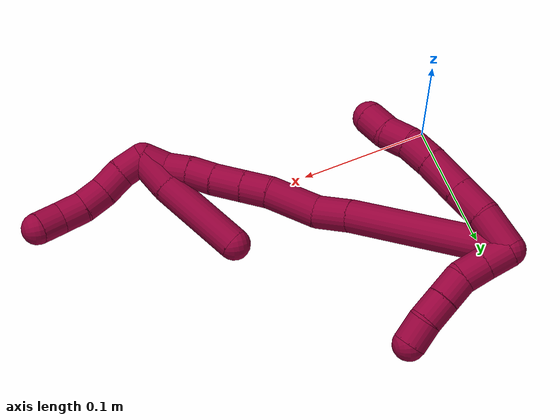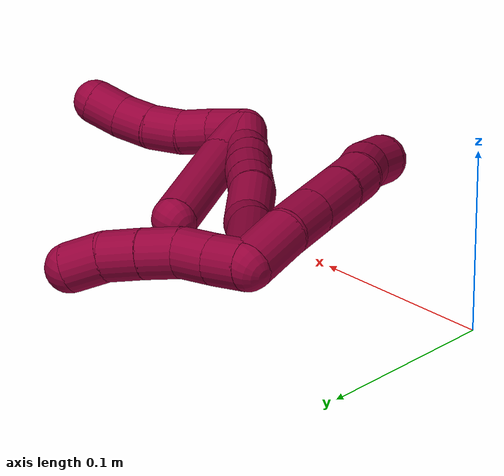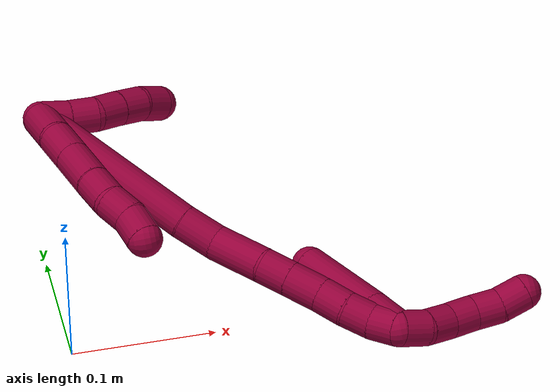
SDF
<sdf version="1.7">
 <world name="default">
  <model name="8">
   <static>0</static>
   <link name="8">
    <collision name="collision-cylinder-e_1_2_8">
     <pose>0.003474 -0.01459 0.004266 1.28632 0.22469 0.168709</pose>
     <geometry><cylinder><radius>0.0125</radius><length>0.031185</length></cylinder></geometry>
     <surface>
      <friction><ode><mu>1.16</mu><mu2>1.16</mu2><slip1>0</slip1><slip2>0</slip2></ode></friction>
      <contact><ode><kp>1e+06</kp><kd>1</kd><max_vel>0</max_vel><min_depth>0.001</min_depth></ode></contact>
     </surface>
    </collision>
    <visual name="visual-cylinder-e_1_2_8">
     <pose>0.003474 -0.01459 0.004266 1.28632 0.22469 0.168709</pose>
     <geometry><cylinder><radius>0.0125</radius><length>0.031185</length></cylinder></geometry>
     <material><ambient>0.584314 0 0.227451 1</ambient></material>
    </visual>
    <collision name="collision-cylinder-e_2_8_9">
     <pose>0.011927 -0.040204 0.012963 1.18861 0.396782 0.270069</pose>
     <geometry><cylinder><radius>0.0125</radius><length>0.025765</length></cylinder></geometry>
     <surface>
      <friction><ode><mu>1.16</mu><mu2>1.16</mu2><slip1>0</slip1><slip2>0</slip2></ode></friction>
      <contact><ode><kp>1e+06</kp><kd>1</kd><max_vel>0</max_vel><min_depth>0.001</min_depth></ode></contact>
     </surface>
    </collision>
    <visual name="visual-cylinder-e_2_8_9">
     <pose>0.011927 -0.040204 0.012963 1.18861 0.396782 0.270069</pose>
     <geometry><cylinder><radius>0.0125</radius><length>0.025765</length></cylinder></geometry>
     <material><ambient>0.584314 0 0.227451 1</ambient></material>
    </visual>
    <collision name="collision-cylinder-e_3_9_10">
     <pose>0.022793 -0.064455 0.022575 1.1975 0.392948 0.269962</pose>
     <geometry><cylinder><radius>0.0125</radius><length>0.030754</length></cylinder></geometry>
     <surface>
      <friction><ode><mu>1.16</mu><mu2>1.16</mu2><slip1>0</slip1><slip2>0</slip2></ode></friction>
      <contact><ode><kp>1e+06</kp><kd>1</kd><max_vel>0</max_vel><min_depth>0.001</min_depth></ode></contact>
     </surface>
    </collision>
    <visual name="visual-cylinder-e_3_9_10">
     <pose>0.022793 -0.064455 0.022575 1.1975 0.392948 0.269962</pose>
     <geometry><cylinder><radius>0.0125</radius><length>0.030754</length></cylinder></geometry>
     <material><ambient>0.584314 0 0.227451 1</ambient></material>
    </visual>
    <collision name="collision-cylinder-e_4_10_11">
     <pose>0.033486 -0.086726 0.032015 1.13062 0.448033 0.287082</pose>
     <geometry><cylinder><radius>0.0125</radius><length>0.022185</length></cylinder></geometry>
     <surface>
      <friction><ode><mu>1.16</mu><mu2>1.16</mu2><slip1>0</slip1><slip2>0</slip2></ode></friction>
      <contact><ode><kp>1e+06</kp><kd>1</kd><max_vel>0</max_vel><min_depth>0.001</min_depth></ode></contact>
     </surface>
    </collision>
    <visual name="visual-cylinder-e_4_10_11">
     <pose>0.033486 -0.086726 0.032015 1.13062 0.448033 0.287082</pose>
     <geometry><cylinder><radius>0.0125</radius><length>0.022185</length></cylinder></geometry>
     <material><ambient>0.584314 0 0.227451 1</ambient></material>
    </visual>
    <collision name="collision-cylinder-e_5_11_12">
     <pose>0.043361 -0.102319 0.041881 0.862834 0.531675 0.249383</pose>
     <geometry><cylinder><radius>0.0125</radius><length>0.020001</length></cylinder></geometry>
     <surface>
      <friction><ode><mu>1.16</mu><mu2>1.16</mu2><slip1>0</slip1><slip2>0</slip2></ode></friction>
      <contact><ode><kp>1e+06</kp><kd>1</kd><max_vel>0</max_vel><min_depth>0.001</min_depth></ode></contact>
     </surface>
    </collision>
    <visual name="visual-cylinder-e_5_11_12">
     <pose>0.043361 -0.102319 0.041881 0.862834 0.531675 0.249383</pose>
     <geometry><cylinder><radius>0.0125</radius><length>0.020001</length></cylinder></geometry>
     <material><ambient>0.584314 0 0.227451 1</ambient></material>
    </visual>
    <collision name="collision-cylinder-e_6_12_6">
     <pose>0.054016 -0.11662 0.050621 1.18646 0.588817 0.403329</pose>
     <geometry><cylinder><radius>0.0125</radius><length>0.02011</length></cylinder></geometry>
     <surface>
      <friction><ode><mu>1.16</mu><mu2>1.16</mu2><slip1>0</slip1><slip2>0</slip2></ode></friction>
      <contact><ode><kp>1e+06</kp><kd>1</kd><max_vel>0</max_vel><min_depth>0.001</min_depth></ode></contact>
     </surface>
    </collision>
    <visual name="visual-cylinder-e_6_12_6">
     <pose>0.054016 -0.11662 0.050621 1.18646 0.588817 0.403329</pose>
     <geometry><cylinder><radius>0.0125</radius><length>0.02011</length></cylinder></geometry>
     <material><ambient>0.584314 0 0.227451 1</ambient></material>
    </visual>
    <collision name="collision-cylinder-e_1_2_13">
     <pose>0.002278 0.002464 0.00942 -0.255877 0.229824 -0.029694</pose>
     <geometry><cylinder><radius>0.0125</radius><length>0.02</length></cylinder></geometry>
     <surface>
      <friction><ode><mu>1.16</mu><mu2>1.16</mu2><slip1>0</slip1><slip2>0</slip2></ode></friction>
      <contact><ode><kp>1e+06</kp><kd>1</kd><max_vel>0</max_vel><min_depth>0.001</min_depth></ode></contact>
     </surface>
    </collision>
    <visual name="visual-cylinder-e_1_2_13">
     <pose>0.002278 0.002464 0.00942 -0.255877 0.229824 -0.029694</pose>
     <geometry><cylinder><radius>0.0125</radius><length>0.02</length></cylinder></geometry>
     <material><ambient>0.584314 0 0.227451 1</ambient></material>
    </visual>
    <collision name="collision-cylinder-e_2_13_14">
     <pose>0.005943 0.007725 0.02834 -0.286294 0.139179 -0.020092</pose>
     <geometry><cylinder><radius>0.0125</radius><length>0.02</length></cylinder></geometry>
     <surface>
      <friction><ode><mu>1.16</mu><mu2>1.16</mu2><slip1>0</slip1><slip2>0</slip2></ode></friction>
      <contact><ode><kp>1e+06</kp><kd>1</kd><max_vel>0</max_vel><min_depth>0.001</min_depth></ode></contact>
     </surface>
    </collision>
    <visual name="visual-cylinder-e_2_13_14">
     <pose>0.005943 0.007725 0.02834 -0.286294 0.139179 -0.020092</pose>
     <geometry><cylinder><radius>0.0125</radius><length>0.02</length></cylinder></geometry>
     <material><ambient>0.584314 0 0.227451 1</ambient></material>
    </visual>
    <collision name="collision-cylinder-e_3_14_15">
     <pose>0.0085 0.016188 0.045997 -0.607099 0.117173 -0.03674</pose>
     <geometry><cylinder><radius>0.0125</radius><length>0.02</length></cylinder></geometry>
     <surface>
      <friction><ode><mu>1.16</mu><mu2>1.16</mu2><slip1>0</slip1><slip2>0</slip2></ode></friction>
      <contact><ode><kp>1e+06</kp><kd>1</kd><max_vel>0</max_vel><min_depth>0.001</min_depth></ode></contact>
     </surface>
    </collision>
    <visual name="visual-cylinder-e_3_14_15">
     <pose>0.0085 0.016188 0.045997 -0.607099 0.117173 -0.03674</pose>
     <geometry><cylinder><radius>0.0125</radius><length>0.02</length></cylinder></geometry>
     <material><ambient>0.584314 0 0.227451 1</ambient></material>
    </visual>
    <collision name="collision-cylinder-e_4_15_16">
     <pose>0.011228 0.027537 0.062233 -0.613081 0.156539 -0.049638</pose>
     <geometry><cylinder><radius>0.0125</radius><length>0.02</length></cylinder></geometry>
     <surface>
      <friction><ode><mu>1.16</mu><mu2>1.16</mu2><slip1>0</slip1><slip2>0</slip2></ode></friction>
      <contact><ode><kp>1e+06</kp><kd>1</kd><max_vel>0</max_vel><min_depth>0.001</min_depth></ode></contact>
     </surface>
    </collision>
    <visual name="visual-cylinder-e_4_15_16">
     <pose>0.011228 0.027537 0.062233 -0.613081 0.156539 -0.049638</pose>
     <geometry><cylinder><radius>0.0125</radius><length>0.02</length></cylinder></geometry>
     <material><ambient>0.584314 0 0.227451 1</ambient></material>
    </visual>
    <collision name="collision-cylinder-e_5_16_5">
     <pose>0.015902 0.039707 0.077256 -0.751338 0.316831 -0.125848</pose>
     <geometry><cylinder><radius>0.0125</radius><length>0.02</length></cylinder></geometry>
     <surface>
      <friction><ode><mu>1.16</mu><mu2>1.16</mu2><slip1>0</slip1><slip2>0</slip2></ode></friction>
      <contact><ode><kp>1e+06</kp><kd>1</kd><max_vel>0</max_vel><min_depth>0.001</min_depth></ode></contact>
     </surface>
    </collision>
    <visual name="visual-cylinder-e_5_16_5">
     <pose>0.015902 0.039707 0.077256 -0.751338 0.316831 -0.125848</pose>
     <geometry><cylinder><radius>0.0125</radius><length>0.02</length></cylinder></geometry>
     <material><ambient>0.584314 0 0.227451 1</ambient></material>
    </visual>
    <collision name="collision-cylinder-e_1_2_17">
     <pose>0.037861 -0.028933 0.041382 0.610161 0.643385 0.209135</pose>
     <geometry><cylinder><radius>0.0125</radius><length>0.126222</length></cylinder></geometry>
     <surface>
      <friction><ode><mu>1.16</mu><mu2>1.16</mu2><slip1>0</slip1><slip2>0</slip2></ode></friction>
      <contact><ode><kp>1e+06</kp><kd>1</kd><max_vel>0</max_vel><min_depth>0.001</min_depth></ode></contact>
     </surface>
    </collision>
    <visual name="visual-cylinder-e_1_2_17">
     <pose>0.037861 -0.028933 0.041382 0.610161 0.643385 0.209135</pose>
     <geometry><cylinder><radius>0.0125</radius><length>0.126222</length></cylinder></geometry>
     <material><ambient>0.584314 0 0.227451 1</ambient></material>
    </visual>
    <collision name="collision-cylinder-e_2_17_18">
     <pose>0.083792 -0.063244 0.092585 0.501036 0.624528 0.164844</pose>
     <geometry><cylinder><radius>0.0125</radius><length>0.027605</length></cylinder></geometry>
     <surface>
      <friction><ode><mu>1.16</mu><mu2>1.16</mu2><slip1>0</slip1><slip2>0</slip2></ode></friction>
      <contact><ode><kp>1e+06</kp><kd>1</kd><max_vel>0</max_vel><min_depth>0.001</min_depth></ode></contact>
     </surface>
    </collision>
    <visual name="visual-cylinder-e_2_17_18">
     <pose>0.083792 -0.063244 0.092585 0.501036 0.624528 0.164844</pose>
     <geometry><cylinder><radius>0.0125</radius><length>0.027605</length></cylinder></geometry>
     <material><ambient>0.584314 0 0.227451 1</ambient></material>
    </visual>
    <collision name="collision-cylinder-e_3_18_19">
     <pose>0.099082 -0.080807 0.116236 0.72226 0.373284 0.142406</pose>
     <geometry><cylinder><radius>0.0125</radius><length>0.039591</length></cylinder></geometry>
     <surface>
      <friction><ode><mu>1.16</mu><mu2>1.16</mu2><slip1>0</slip1><slip2>0</slip2></ode></friction>
      <contact><ode><kp>1e+06</kp><kd>1</kd><max_vel>0</max_vel><min_depth>0.001</min_depth></ode></contact>
     </surface>
    </collision>
    <visual name="visual-cylinder-e_3_18_19">
     <pose>0.099082 -0.080807 0.116236 0.72226 0.373284 0.142406</pose>
     <geometry><cylinder><radius>0.0125</radius><length>0.039591</length></cylinder></geometry>
     <material><ambient>0.584314 0 0.227451 1</ambient></material>
    </visual>
    <collision name="collision-cylinder-e_4_19_20">
     <pose>0.11118 -0.09812 0.137952 0.576537 0.478526 0.144416</pose>
     <geometry><cylinder><radius>0.0125</radius><length>0.021193</length></cylinder></geometry>
     <surface>
      <friction><ode><mu>1.16</mu><mu2>1.16</mu2><slip1>0</slip1><slip2>0</slip2></ode></friction>
      <contact><ode><kp>1e+06</kp><kd>1</kd><max_vel>0</max_vel><min_depth>0.001</min_depth></ode></contact>
     </surface>
    </collision>
    <visual name="visual-cylinder-e_4_19_20">
     <pose>0.11118 -0.09812 0.137952 0.576537 0.478526 0.144416</pose>
     <geometry><cylinder><radius>0.0125</radius><length>0.021193</length></cylinder></geometry>
     <material><ambient>0.584314 0 0.227451 1</ambient></material>
    </visual>
    <collision name="collision-cylinder-e_5_20_21">
     <pose>0.121769 -0.109206 0.154974 0.577895 0.482253 0.145943</pose>
     <geometry><cylinder><radius>0.0125</radius><length>0.024623</length></cylinder></geometry>
     <surface>
      <friction><ode><mu>1.16</mu><mu2>1.16</mu2><slip1>0</slip1><slip2>0</slip2></ode></friction>
      <contact><ode><kp>1e+06</kp><kd>1</kd><max_vel>0</max_vel><min_depth>0.001</min_depth></ode></contact>
     </surface>
    </collision>
    <visual name="visual-cylinder-e_5_20_21">
     <pose>0.121769 -0.109206 0.154974 0.577895 0.482253 0.145943</pose>
     <geometry><cylinder><radius>0.0125</radius><length>0.024623</length></cylinder></geometry>
     <material><ambient>0.584314 0 0.227451 1</ambient></material>
    </visual>
    <collision name="collision-cylinder-e_6_21_22">
     <pose>0.132277 -0.120739 0.17124 0.663648 0.487399 0.170929</pose>
     <geometry><cylinder><radius>0.0125</radius><length>0.020487</length></cylinder></geometry>
     <surface>
      <friction><ode><mu>1.16</mu><mu2>1.16</mu2><slip1>0</slip1><slip2>0</slip2></ode></friction>
      <contact><ode><kp>1e+06</kp><kd>1</kd><max_vel>0</max_vel><min_depth>0.001</min_depth></ode></contact>
     </surface>
    </collision>
    <visual name="visual-cylinder-e_6_21_22">
     <pose>0.132277 -0.120739 0.17124 0.663648 0.487399 0.170929</pose>
     <geometry><cylinder><radius>0.0125</radius><length>0.020487</length></cylinder></geometry>
     <material><ambient>0.584314 0 0.227451 1</ambient></material>
    </visual>
    <collision name="collision-cylinder-e_7_22_23">
     <pose>0.141814 -0.130541 0.186218 0.493947 0.488705 0.12556</pose>
     <geometry><cylinder><radius>0.0125</radius><length>0.020193</length></cylinder></geometry>
     <surface>
      <friction><ode><mu>1.16</mu><mu2>1.16</mu2><slip1>0</slip1><slip2>0</slip2></ode></friction>
      <contact><ode><kp>1e+06</kp><kd>1</kd><max_vel>0</max_vel><min_depth>0.001</min_depth></ode></contact>
     </surface>
    </collision>
    <visual name="visual-cylinder-e_7_22_23">
     <pose>0.141814 -0.130541 0.186218 0.493947 0.488705 0.12556</pose>
     <geometry><cylinder><radius>0.0125</radius><length>0.020193</length></cylinder></geometry>
     <material><ambient>0.584314 0 0.227451 1</ambient></material>
    </visual>
    <collision name="collision-cylinder-e_8_23_1">
     <pose>0.148491 -0.140955 0.201736 0.678893 0.194139 0.068742</pose>
     <geometry><cylinder><radius>0.0125</radius><length>0.020086</length></cylinder></geometry>
     <surface>
      <friction><ode><mu>1.16</mu><mu2>1.16</mu2><slip1>0</slip1><slip2>0</slip2></ode></friction>
      <contact><ode><kp>1e+06</kp><kd>1</kd><max_vel>0</max_vel><min_depth>0.001</min_depth></ode></contact>
     </surface>
    </collision>
    <visual name="visual-cylinder-e_8_23_1">
     <pose>0.148491 -0.140955 0.201736 0.678893 0.194139 0.068742</pose>
     <geometry><cylinder><radius>0.0125</radius><length>0.020086</length></cylinder></geometry>
     <material><ambient>0.584314 0 0.227451 1</ambient></material>
    </visual>
    <collision name="collision-cylinder-e_1_1_24">
     <pose>0.153285 -0.143929 0.218434 -0.342014 0.28965 -0.050363</pose>
     <geometry><cylinder><radius>0.0125</radius><length>0.02</length></cylinder></geometry>
     <surface>
      <friction><ode><mu>1.16</mu><mu2>1.16</mu2><slip1>0</slip1><slip2>0</slip2></ode></friction>
      <contact><ode><kp>1e+06</kp><kd>1</kd><max_vel>0</max_vel><min_depth>0.001</min_depth></ode></contact>
     </surface>
    </collision>
    <visual name="visual-cylinder-e_1_1_24">
     <pose>0.153285 -0.143929 0.218434 -0.342014 0.28965 -0.050363</pose>
     <geometry><cylinder><radius>0.0125</radius><length>0.02</length></cylinder></geometry>
     <material><ambient>0.584314 0 0.227451 1</ambient></material>
    </visual>
    <collision name="collision-cylinder-e_2_24_25">
     <pose>0.157655 -0.135384 0.235787 -0.569585 0.151957 -0.044564</pose>
     <geometry><cylinder><radius>0.0125</radius><length>0.02</length></cylinder></geometry>
     <surface>
      <friction><ode><mu>1.16</mu><mu2>1.16</mu2><slip1>0</slip1><slip2>0</slip2></ode></friction>
      <contact><ode><kp>1e+06</kp><kd>1</kd><max_vel>0</max_vel><min_depth>0.001</min_depth></ode></contact>
     </surface>
    </collision>
    <visual name="visual-cylinder-e_2_24_25">
     <pose>0.157655 -0.135384 0.235787 -0.569585 0.151957 -0.044564</pose>
     <geometry><cylinder><radius>0.0125</radius><length>0.02</length></cylinder></geometry>
     <material><ambient>0.584314 0 0.227451 1</ambient></material>
    </visual>
    <collision name="collision-cylinder-e_3_25_26">
     <pose>0.159592 -0.126052 0.253266 -0.412031 0.042342 -0.00885</pose>
     <geometry><cylinder><radius>0.0125</radius><length>0.02</length></cylinder></geometry>
     <surface>
      <friction><ode><mu>1.16</mu><mu2>1.16</mu2><slip1>0</slip1><slip2>0</slip2></ode></friction>
      <contact><ode><kp>1e+06</kp><kd>1</kd><max_vel>0</max_vel><min_depth>0.001</min_depth></ode></contact>
     </surface>
    </collision>
    <visual name="visual-cylinder-e_3_25_26">
     <pose>0.159592 -0.126052 0.253266 -0.412031 0.042342 -0.00885</pose>
     <geometry><cylinder><radius>0.0125</radius><length>0.02</length></cylinder></geometry>
     <material><ambient>0.584314 0 0.227451 1</ambient></material>
    </visual>
    <collision name="collision-cylinder-e_4_26_27">
     <pose>0.160139 -0.119824 0.272169 -0.224567 0.012365 -0.001394</pose>
     <geometry><cylinder><radius>0.0125</radius><length>0.02</length></cylinder></geometry>
     <surface>
      <friction><ode><mu>1.16</mu><mu2>1.16</mu2><slip1>0</slip1><slip2>0</slip2></ode></friction>
      <contact><ode><kp>1e+06</kp><kd>1</kd><max_vel>0</max_vel><min_depth>0.001</min_depth></ode></contact>
     </surface>
    </collision>
    <visual name="visual-cylinder-e_4_26_27">
     <pose>0.160139 -0.119824 0.272169 -0.224567 0.012365 -0.001394</pose>
     <geometry><cylinder><radius>0.0125</radius><length>0.02</length></cylinder></geometry>
     <material><ambient>0.584314 0 0.227451 1</ambient></material>
    </visual>
    <collision name="collision-cylinder-e_5_27_4">
     <pose>0.158158 -0.115312 0.291422 -0.236028 -0.212078 0.025238</pose>
     <geometry><cylinder><radius>0.0125</radius><length>0.02</length></cylinder></geometry>
     <surface>
      <friction><ode><mu>1.16</mu><mu2>1.16</mu2><slip1>0</slip1><slip2>0</slip2></ode></friction>
      <contact><ode><kp>1e+06</kp><kd>1</kd><max_vel>0</max_vel><min_depth>0.001</min_depth></ode></contact>
     </surface>
    </collision>
    <visual name="visual-cylinder-e_5_27_4">
     <pose>0.158158 -0.115312 0.291422 -0.236028 -0.212078 0.025238</pose>
     <geometry><cylinder><radius>0.0125</radius><length>0.02</length></cylinder></geometry>
     <material><ambient>0.584314 0 0.227451 1</ambient></material>
    </visual>
    <collision name="collision-cylinder-e_1_1_28">
     <pose>0.147135 -0.133714 0.203444 -1.98858 -0.220509 0.337293</pose>
     <geometry><cylinder><radius>0.0125</radius><length>0.030115</length></cylinder></geometry>
     <surface>
      <friction><ode><mu>1.16</mu><mu2>1.16</mu2><slip1>0</slip1><slip2>0</slip2></ode></friction>
      <contact><ode><kp>1e+06</kp><kd>1</kd><max_vel>0</max_vel><min_depth>0.001</min_depth></ode></contact>
     </surface>
    </collision>
    <visual name="visual-cylinder-e_1_1_28">
     <pose>0.147135 -0.133714 0.203444 -1.98858 -0.220509 0.337293</pose>
     <geometry><cylinder><radius>0.0125</radius><length>0.030115</length></cylinder></geometry>
     <material><ambient>0.584314 0 0.227451 1</ambient></material>
    </visual>
    <collision name="collision-cylinder-e_2_28_3">
     <pose>0.133489 -0.091613 0.180403 -2.10806 -0.300798 0.521215</pose>
     <geometry><cylinder><radius>0.0125</radius><length>0.069885</length></cylinder></geometry>
     <surface>
      <friction><ode><mu>1.16</mu><mu2>1.16</mu2><slip1>0</slip1><slip2>0</slip2></ode></friction>
      <contact><ode><kp>1e+06</kp><kd>1</kd><max_vel>0</max_vel><min_depth>0.001</min_depth></ode></contact>
     </surface>
    </collision>
    <visual name="visual-cylinder-e_2_28_3">
     <pose>0.133489 -0.091613 0.180403 -2.10806 -0.300798 0.521215</pose>
     <geometry><cylinder><radius>0.0125</radius><length>0.069885</length></cylinder></geometry>
     <material><ambient>0.584314 0 0.227451 1</ambient></material>
    </visual>
    <collision name="collision-sphere-3">
     <pose>0.123136 -0.062941 0.163322 0 -0 0</pose>
     <geometry><sphere><radius>0.0125</radius></sphere></geometry>
     <surface>
      <friction><ode><mu>1.16</mu><mu2>1.16</mu2><slip1>0</slip1><slip2>0</slip2></ode></friction>
      <contact><ode><kp>1e+06</kp><kd>1</kd><max_vel>0</max_vel><min_depth>0.001</min_depth></ode></contact>
     </surface>
    </collision>
    <visual name="visual-sphere-3">
     <pose>0.123136 -0.062941 0.163322 0 -0 0</pose>
     <geometry><sphere><radius>0.0125</radius></sphere></geometry>
     <material><ambient>0.584314 0 0.227451 1</ambient></material>
    </visual>
    <collision name="collision-sphere-28">
     <pose>0.143842 -0.120284 0.197483 0 -0 0</pose>
     <geometry><sphere><radius>0.0125</radius></sphere></geometry>
     <surface>
      <friction><ode><mu>1.16</mu><mu2>1.16</mu2><slip1>0</slip1><slip2>0</slip2></ode></friction>
      <contact><ode><kp>1e+06</kp><kd>1</kd><max_vel>0</max_vel><min_depth>0.001</min_depth></ode></contact>
     </surface>
    </collision>
    <visual name="visual-sphere-28">
     <pose>0.143842 -0.120284 0.197483 0 -0 0</pose>
     <geometry><sphere><radius>0.0125</radius></sphere></geometry>
     <material><ambient>0.584314 0 0.227451 1</ambient></material>
    </visual>
    <collision name="collision-sphere-4">
     <pose>0.156053 -0.113026 0.300927 0 -0 0</pose>
     <geometry><sphere><radius>0.0125</radius></sphere></geometry>
     <surface>
      <friction><ode><mu>1.16</mu><mu2>1.16</mu2><slip1>0</slip1><slip2>0</slip2></ode></friction>
      <contact><ode><kp>1e+06</kp><kd>1</kd><max_vel>0</max_vel><min_depth>0.001</min_depth></ode></contact>
     </surface>
    </collision>
    <visual name="visual-sphere-4">
     <pose>0.156053 -0.113026 0.300927 0 -0 0</pose>
     <geometry><sphere><radius>0.0125</radius></sphere></geometry>
     <material><ambient>0.584314 0 0.227451 1</ambient></material>
    </visual>
    <collision name="collision-sphere-27">
     <pose>0.160263 -0.117598 0.281917 0 -0 0</pose>
     <geometry><sphere><radius>0.0125</radius></sphere></geometry>
     <surface>
      <friction><ode><mu>1.16</mu><mu2>1.16</mu2><slip1>0</slip1><slip2>0</slip2></ode></friction>
      <contact><ode><kp>1e+06</kp><kd>1</kd><max_vel>0</max_vel><min_depth>0.001</min_depth></ode></contact>
     </surface>
    </collision>
    <visual name="visual-sphere-27">
     <pose>0.160263 -0.117598 0.281917 0 -0 0</pose>
     <geometry><sphere><radius>0.0125</radius></sphere></geometry>
     <material><ambient>0.584314 0 0.227451 1</ambient></material>
    </visual>
    <collision name="collision-sphere-26">
     <pose>0.160015 -0.122051 0.262421 0 -0 0</pose>
     <geometry><sphere><radius>0.0125</radius></sphere></geometry>
     <surface>
      <friction><ode><mu>1.16</mu><mu2>1.16</mu2><slip1>0</slip1><slip2>0</slip2></ode></friction>
      <contact><ode><kp>1e+06</kp><kd>1</kd><max_vel>0</max_vel><min_depth>0.001</min_depth></ode></contact>
     </surface>
    </collision>
    <visual name="visual-sphere-26">
     <pose>0.160015 -0.122051 0.262421 0 -0 0</pose>
     <geometry><sphere><radius>0.0125</radius></sphere></geometry>
     <material><ambient>0.584314 0 0.227451 1</ambient></material>
    </visual>
    <collision name="collision-sphere-25">
     <pose>0.159169 -0.130053 0.244111 0 -0 0</pose>
     <geometry><sphere><radius>0.0125</radius></sphere></geometry>
     <surface>
      <friction><ode><mu>1.16</mu><mu2>1.16</mu2><slip1>0</slip1><slip2>0</slip2></ode></friction>
      <contact><ode><kp>1e+06</kp><kd>1</kd><max_vel>0</max_vel><min_depth>0.001</min_depth></ode></contact>
     </surface>
    </collision>
    <visual name="visual-sphere-25">
     <pose>0.159169 -0.130053 0.244111 0 -0 0</pose>
     <geometry><sphere><radius>0.0125</radius></sphere></geometry>
     <material><ambient>0.584314 0 0.227451 1</ambient></material>
    </visual>
    <collision name="collision-sphere-24">
     <pose>0.156141 -0.140715 0.227462 0 -0 0</pose>
     <geometry><sphere><radius>0.0125</radius></sphere></geometry>
     <surface>
      <friction><ode><mu>1.16</mu><mu2>1.16</mu2><slip1>0</slip1><slip2>0</slip2></ode></friction>
      <contact><ode><kp>1e+06</kp><kd>1</kd><max_vel>0</max_vel><min_depth>0.001</min_depth></ode></contact>
     </surface>
    </collision>
    <visual name="visual-sphere-24">
     <pose>0.156141 -0.140715 0.227462 0 -0 0</pose>
     <geometry><sphere><radius>0.0125</radius></sphere></geometry>
     <material><ambient>0.584314 0 0.227451 1</ambient></material>
    </visual>
    <collision name="collision-sphere-1">
     <pose>0.150429 -0.147143 0.209406 0 -0 0</pose>
     <geometry><sphere><radius>0.0125</radius></sphere></geometry>
     <surface>
      <friction><ode><mu>1.16</mu><mu2>1.16</mu2><slip1>0</slip1><slip2>0</slip2></ode></friction>
      <contact><ode><kp>1e+06</kp><kd>1</kd><max_vel>0</max_vel><min_depth>0.001</min_depth></ode></contact>
     </surface>
    </collision>
    <visual name="visual-sphere-1">
     <pose>0.150429 -0.147143 0.209406 0 -0 0</pose>
     <geometry><sphere><radius>0.0125</radius></sphere></geometry>
     <material><ambient>0.584314 0 0.227451 1</ambient></material>
    </visual>
    <collision name="collision-sphere-23">
     <pose>0.146554 -0.134767 0.194067 0 -0 0</pose>
     <geometry><sphere><radius>0.0125</radius></sphere></geometry>
     <surface>
      <friction><ode><mu>1.16</mu><mu2>1.16</mu2><slip1>0</slip1><slip2>0</slip2></ode></friction>
      <contact><ode><kp>1e+06</kp><kd>1</kd><max_vel>0</max_vel><min_depth>0.001</min_depth></ode></contact>
     </surface>
    </collision>
    <visual name="visual-sphere-23">
     <pose>0.146554 -0.134767 0.194067 0 -0 0</pose>
     <geometry><sphere><radius>0.0125</radius></sphere></geometry>
     <material><ambient>0.584314 0 0.227451 1</ambient></material>
    </visual>
    <collision name="collision-sphere-22">
     <pose>0.137074 -0.126315 0.178369 0 -0 0</pose>
     <geometry><sphere><radius>0.0125</radius></sphere></geometry>
     <surface>
      <friction><ode><mu>1.16</mu><mu2>1.16</mu2><slip1>0</slip1><slip2>0</slip2></ode></friction>
      <contact><ode><kp>1e+06</kp><kd>1</kd><max_vel>0</max_vel><min_depth>0.001</min_depth></ode></contact>
     </surface>
    </collision>
    <visual name="visual-sphere-22">
     <pose>0.137074 -0.126315 0.178369 0 -0 0</pose>
     <geometry><sphere><radius>0.0125</radius></sphere></geometry>
     <material><ambient>0.584314 0 0.227451 1</ambient></material>
    </visual>
    <collision name="collision-sphere-21">
     <pose>0.127479 -0.115164 0.16411 0 -0 0</pose>
     <geometry><sphere><radius>0.0125</radius></sphere></geometry>
     <surface>
      <friction><ode><mu>1.16</mu><mu2>1.16</mu2><slip1>0</slip1><slip2>0</slip2></ode></friction>
      <contact><ode><kp>1e+06</kp><kd>1</kd><max_vel>0</max_vel><min_depth>0.001</min_depth></ode></contact>
     </surface>
    </collision>
    <visual name="visual-sphere-21">
     <pose>0.127479 -0.115164 0.16411 0 -0 0</pose>
     <geometry><sphere><radius>0.0125</radius></sphere></geometry>
     <material><ambient>0.584314 0 0.227451 1</ambient></material>
    </visual>
    <collision name="collision-sphere-12">
     <pose>0.048431 -0.108868 0.047486 0 -0 0</pose>
     <geometry><sphere><radius>0.0125</radius></sphere></geometry>
     <surface>
      <friction><ode><mu>1.16</mu><mu2>1.16</mu2><slip1>0</slip1><slip2>0</slip2></ode></friction>
      <contact><ode><kp>1e+06</kp><kd>1</kd><max_vel>0</max_vel><min_depth>0.001</min_depth></ode></contact>
     </surface>
    </collision>
    <visual name="visual-sphere-12">
     <pose>0.048431 -0.108868 0.047486 0 -0 0</pose>
     <geometry><sphere><radius>0.0125</radius></sphere></geometry>
     <material><ambient>0.584314 0 0.227451 1</ambient></material>
    </visual>
    <collision name="collision-sphere-11">
     <pose>0.038291 -0.095771 0.036275 0 -0 0</pose>
     <geometry><sphere><radius>0.0125</radius></sphere></geometry>
     <surface>
      <friction><ode><mu>1.16</mu><mu2>1.16</mu2><slip1>0</slip1><slip2>0</slip2></ode></friction>
      <contact><ode><kp>1e+06</kp><kd>1</kd><max_vel>0</max_vel><min_depth>0.001</min_depth></ode></contact>
     </surface>
    </collision>
    <visual name="visual-sphere-11">
     <pose>0.038291 -0.095771 0.036275 0 -0 0</pose>
     <geometry><sphere><radius>0.0125</radius></sphere></geometry>
     <material><ambient>0.584314 0 0.227451 1</ambient></material>
    </visual>
    <collision name="collision-sphere-10">
     <pose>0.028681 -0.077682 0.027755 0 -0 0</pose>
     <geometry><sphere><radius>0.0125</radius></sphere></geometry>
     <surface>
      <friction><ode><mu>1.16</mu><mu2>1.16</mu2><slip1>0</slip1><slip2>0</slip2></ode></friction>
      <contact><ode><kp>1e+06</kp><kd>1</kd><max_vel>0</max_vel><min_depth>0.001</min_depth></ode></contact>
     </surface>
    </collision>
    <visual name="visual-sphere-10">
     <pose>0.028681 -0.077682 0.027755 0 -0 0</pose>
     <geometry><sphere><radius>0.0125</radius></sphere></geometry>
     <material><ambient>0.584314 0 0.227451 1</ambient></material>
    </visual>
    <collision name="collision-sphere-9">
     <pose>0.016905 -0.051228 0.017395 0 -0 0</pose>
     <geometry><sphere><radius>0.0125</radius></sphere></geometry>
     <surface>
      <friction><ode><mu>1.16</mu><mu2>1.16</mu2><slip1>0</slip1><slip2>0</slip2></ode></friction>
      <contact><ode><kp>1e+06</kp><kd>1</kd><max_vel>0</max_vel><min_depth>0.001</min_depth></ode></contact>
     </surface>
    </collision>
    <visual name="visual-sphere-9">
     <pose>0.016905 -0.051228 0.017395 0 -0 0</pose>
     <geometry><sphere><radius>0.0125</radius></sphere></geometry>
     <material><ambient>0.584314 0 0.227451 1</ambient></material>
    </visual>
    <collision name="collision-sphere-2">
     <geometry><sphere><radius>0.0125</radius></sphere></geometry>
     <surface>
      <friction><ode><mu>1.16</mu><mu2>1.16</mu2><slip1>0</slip1><slip2>0</slip2></ode></friction>
      <contact><ode><kp>1e+06</kp><kd>1</kd><max_vel>0</max_vel><min_depth>0.001</min_depth></ode></contact>
     </surface>
    </collision>
    <visual name="visual-sphere-2">
     <geometry><sphere><radius>0.0125</radius></sphere></geometry>
     <material><ambient>0.584314 0 0.227451 1</ambient></material>
    </visual>
    <collision name="collision-sphere-19">
     <pose>0.106301 -0.092993 0.130066 0 -0 0</pose>
     <geometry><sphere><radius>0.0125</radius></sphere></geometry>
     <surface>
      <friction><ode><mu>1.16</mu><mu2>1.16</mu2><slip1>0</slip1><slip2>0</slip2></ode></friction>
      <contact><ode><kp>1e+06</kp><kd>1</kd><max_vel>0</max_vel><min_depth>0.001</min_depth></ode></contact>
     </surface>
    </collision>
    <visual name="visual-sphere-19">
     <pose>0.106301 -0.092993 0.130066 0 -0 0</pose>
     <geometry><sphere><radius>0.0125</radius></sphere></geometry>
     <material><ambient>0.584314 0 0.227451 1</ambient></material>
    </visual>
    <collision name="collision-sphere-8">
     <pose>0.006948 -0.02918 0.008532 0 -0 0</pose>
     <geometry><sphere><radius>0.0125</radius></sphere></geometry>
     <surface>
      <friction><ode><mu>1.16</mu><mu2>1.16</mu2><slip1>0</slip1><slip2>0</slip2></ode></friction>
      <contact><ode><kp>1e+06</kp><kd>1</kd><max_vel>0</max_vel><min_depth>0.001</min_depth></ode></contact>
     </surface>
    </collision>
    <visual name="visual-sphere-8">
     <pose>0.006948 -0.02918 0.008532 0 -0 0</pose>
     <geometry><sphere><radius>0.0125</radius></sphere></geometry>
     <material><ambient>0.584314 0 0.227451 1</ambient></material>
    </visual>
    <collision name="collision-sphere-6">
     <pose>0.0596 -0.124371 0.053757 0 -0 0</pose>
     <geometry><sphere><radius>0.0125</radius></sphere></geometry>
     <surface>
      <friction><ode><mu>1.16</mu><mu2>1.16</mu2><slip1>0</slip1><slip2>0</slip2></ode></friction>
      <contact><ode><kp>1e+06</kp><kd>1</kd><max_vel>0</max_vel><min_depth>0.001</min_depth></ode></contact>
     </surface>
    </collision>
    <visual name="visual-sphere-6">
     <pose>0.0596 -0.124371 0.053757 0 -0 0</pose>
     <geometry><sphere><radius>0.0125</radius></sphere></geometry>
     <material><ambient>0.584314 0 0.227451 1</ambient></material>
    </visual>
    <collision name="collision-sphere-13">
     <pose>0.004556 0.004929 0.01884 0 -0 0</pose>
     <geometry><sphere><radius>0.0125</radius></sphere></geometry>
     <surface>
      <friction><ode><mu>1.16</mu><mu2>1.16</mu2><slip1>0</slip1><slip2>0</slip2></ode></friction>
      <contact><ode><kp>1e+06</kp><kd>1</kd><max_vel>0</max_vel><min_depth>0.001</min_depth></ode></contact>
     </surface>
    </collision>
    <visual name="visual-sphere-13">
     <pose>0.004556 0.004929 0.01884 0 -0 0</pose>
     <geometry><sphere><radius>0.0125</radius></sphere></geometry>
     <material><ambient>0.584314 0 0.227451 1</ambient></material>
    </visual>
    <collision name="collision-sphere-14">
     <pose>0.007331 0.010522 0.03784 0 -0 0</pose>
     <geometry><sphere><radius>0.0125</radius></sphere></geometry>
     <surface>
      <friction><ode><mu>1.16</mu><mu2>1.16</mu2><slip1>0</slip1><slip2>0</slip2></ode></friction>
      <contact><ode><kp>1e+06</kp><kd>1</kd><max_vel>0</max_vel><min_depth>0.001</min_depth></ode></contact>
     </surface>
    </collision>
    <visual name="visual-sphere-14">
     <pose>0.007331 0.010522 0.03784 0 -0 0</pose>
     <geometry><sphere><radius>0.0125</radius></sphere></geometry>
     <material><ambient>0.584314 0 0.227451 1</ambient></material>
    </visual>
    <collision name="collision-sphere-15">
     <pose>0.009669 0.021854 0.054154 0 -0 0</pose>
     <geometry><sphere><radius>0.0125</radius></sphere></geometry>
     <surface>
      <friction><ode><mu>1.16</mu><mu2>1.16</mu2><slip1>0</slip1><slip2>0</slip2></ode></friction>
      <contact><ode><kp>1e+06</kp><kd>1</kd><max_vel>0</max_vel><min_depth>0.001</min_depth></ode></contact>
     </surface>
    </collision>
    <visual name="visual-sphere-15">
     <pose>0.009669 0.021854 0.054154 0 -0 0</pose>
     <geometry><sphere><radius>0.0125</radius></sphere></geometry>
     <material><ambient>0.584314 0 0.227451 1</ambient></material>
    </visual>
    <collision name="collision-sphere-16">
     <pose>0.012787 0.033221 0.070312 0 -0 0</pose>
     <geometry><sphere><radius>0.0125</radius></sphere></geometry>
     <surface>
      <friction><ode><mu>1.16</mu><mu2>1.16</mu2><slip1>0</slip1><slip2>0</slip2></ode></friction>
      <contact><ode><kp>1e+06</kp><kd>1</kd><max_vel>0</max_vel><min_depth>0.001</min_depth></ode></contact>
     </surface>
    </collision>
    <visual name="visual-sphere-16">
     <pose>0.012787 0.033221 0.070312 0 -0 0</pose>
     <geometry><sphere><radius>0.0125</radius></sphere></geometry>
     <material><ambient>0.584314 0 0.227451 1</ambient></material>
    </visual>
    <collision name="collision-sphere-5">
     <pose>0.019018 0.046194 0.0842 0 -0 0</pose>
     <geometry><sphere><radius>0.0125</radius></sphere></geometry>
     <surface>
      <friction><ode><mu>1.16</mu><mu2>1.16</mu2><slip1>0</slip1><slip2>0</slip2></ode></friction>
      <contact><ode><kp>1e+06</kp><kd>1</kd><max_vel>0</max_vel><min_depth>0.001</min_depth></ode></contact>
     </surface>
    </collision>
    <visual name="visual-sphere-5">
     <pose>0.019018 0.046194 0.0842 0 -0 0</pose>
     <geometry><sphere><radius>0.0125</radius></sphere></geometry>
     <material><ambient>0.584314 0 0.227451 1</ambient></material>
    </visual>
    <collision name="collision-sphere-17">
     <pose>0.075722 -0.057865 0.082764 0 -0 0</pose>
     <geometry><sphere><radius>0.0125</radius></sphere></geometry>
     <surface>
      <friction><ode><mu>1.16</mu><mu2>1.16</mu2><slip1>0</slip1><slip2>0</slip2></ode></friction>
      <contact><ode><kp>1e+06</kp><kd>1</kd><max_vel>0</max_vel><min_depth>0.001</min_depth></ode></contact>
     </surface>
    </collision>
    <visual name="visual-sphere-17">
     <pose>0.075722 -0.057865 0.082764 0 -0 0</pose>
     <geometry><sphere><radius>0.0125</radius></sphere></geometry>
     <material><ambient>0.584314 0 0.227451 1</ambient></material>
    </visual>
    <collision name="collision-sphere-18">
     <pose>0.091863 -0.068622 0.102406 0 -0 0</pose>
     <geometry><sphere><radius>0.0125</radius></sphere></geometry>
     <surface>
      <friction><ode><mu>1.16</mu><mu2>1.16</mu2><slip1>0</slip1><slip2>0</slip2></ode></friction>
      <contact><ode><kp>1e+06</kp><kd>1</kd><max_vel>0</max_vel><min_depth>0.001</min_depth></ode></contact>
     </surface>
    </collision>
    <visual name="visual-sphere-18">
     <pose>0.091863 -0.068622 0.102406 0 -0 0</pose>
     <geometry><sphere><radius>0.0125</radius></sphere></geometry>
     <material><ambient>0.584314 0 0.227451 1</ambient></material>
    </visual>
    <collision name="collision-sphere-20">
     <pose>0.116059 -0.103248 0.145837 0 -0 0</pose>
     <geometry><sphere><radius>0.0125</radius></sphere></geometry>
     <surface>
      <friction><ode><mu>1.16</mu><mu2>1.16</mu2><slip1>0</slip1><slip2>0</slip2></ode></friction>
      <contact><ode><kp>1e+06</kp><kd>1</kd><max_vel>0</max_vel><min_depth>0.001</min_depth></ode></contact>
     </surface>
    </collision>
    <visual name="visual-sphere-20">
     <pose>0.116059 -0.103248 0.145837 0 -0 0</pose>
     <geometry><sphere><radius>0.0125</radius></sphere></geometry>
     <material><ambient>0.584314 0 0.227451 1</ambient></material>
    </visual>
    <inertial>
     <pose>0.078869 -0.069949 0.110385 0 -0 0</pose>
     <mass>0.75</mass>
     <inertia>
      <ixx>0.000273</ixx>
      <ixy>0</ixy>
      <ixz>0</ixz>
      <iyy>0.000215</iyy>
      <iyz>0</iyz>
      <izz>-1.1e-05</izz>
     </inertia>
    </inertial>
   </link>
   <pose>0.009053 0.151387 0.088977 -1.20563 1.21043 -1.29649</pose>
  </model>
 </world>
</sdf>
